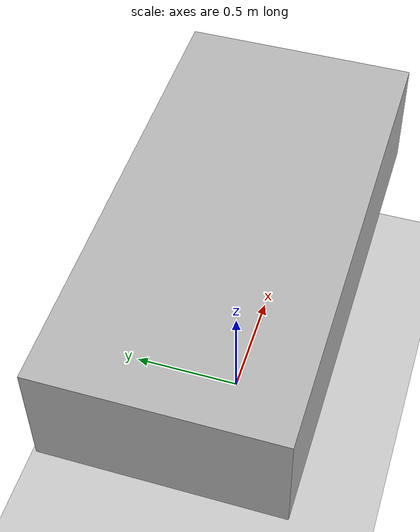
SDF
<?xml version="1.0"?>
<sdf version="1.6">
  <world name="default">
    <gravity>0 0 0.001</gravity>

    <include>
      <uri>model://ground_plane</uri>
    </include>

    <include>
      <uri>model://sun</uri>
    </include>

    <model name='vehicle'>
      <pose>0 0 1 0 -0 0</pose>

      <link name='chassis'>
        <pose>0 0 0 0 0 0</pose>
        <inertial>
          <mass>2</mass>
          <inertia>
            <ixx>0.126164</ixx>
            <ixy>0</ixy>
            <ixz>0</ixz>
            <iyy>0.416519</iyy>
            <iyz>0</iyz>
            <izz>0.481014</izz>
          </inertia>
        </inertial>
        <visual name='visual'>
          <geometry>
            <box>
              <size>2 1 0.5</size>
            </box>
          </geometry>
        </visual>
        <collision name='collision'>
          <geometry>
            <box>
              <size>2 1 0.5</size>
            </box>
          </geometry>
        </collision>
      </link>

      <plugin name='force' filename='libgazebo_ros_force.so'>

        <ros>
          <namespace>/kraken</namespace>
	  <remapping>gazebo_ros_force:=force</remapping>
        </ros>

        <link_name>chassis</link_name>

	<force_frame>link</force_frame>

      </plugin>

    </model>

  </world>
</sdf>
